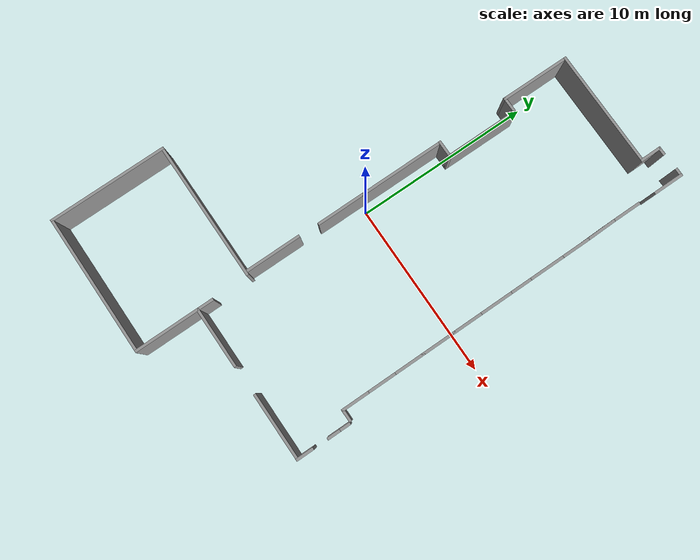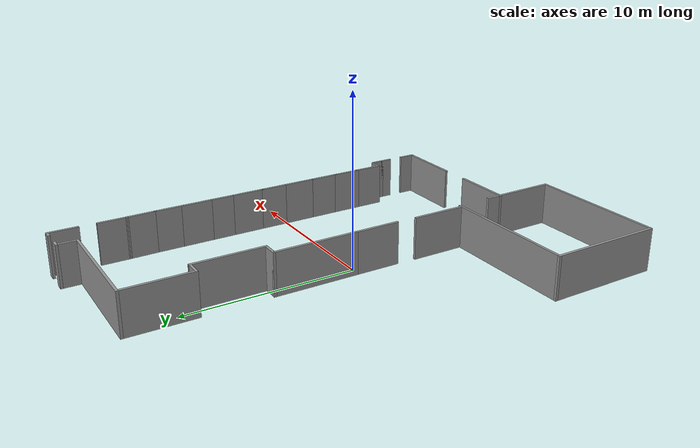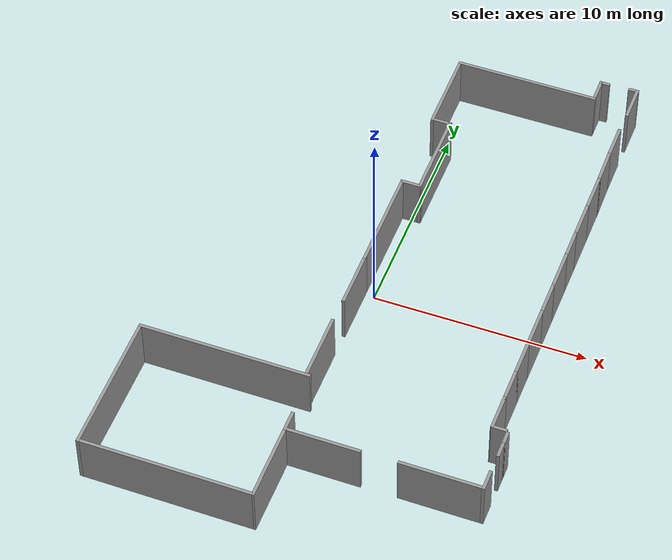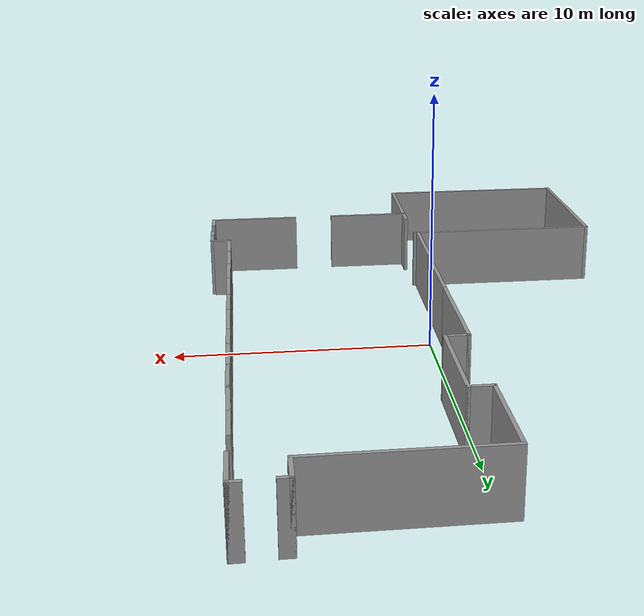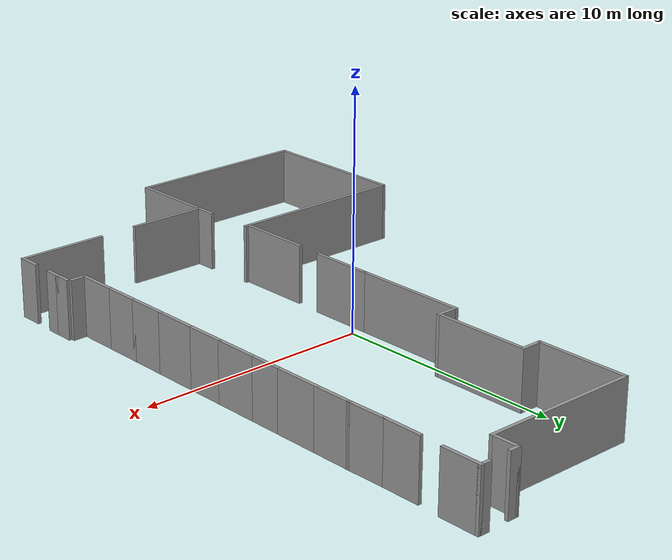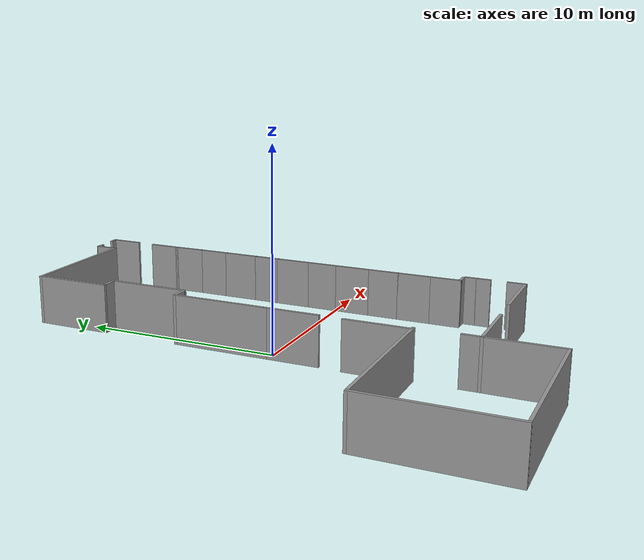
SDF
<?xml version='1.0'?>
<sdf version='1.6'>
  <model name='ecst_thermal_lab_frame_update'>
    <pose frame=''>0.138286 0.267631 0 0 -0 0</pose>
    <link name='Wall_0'>
      <collision name='Wall_0_Collision'>
        <geometry>
          <box>
            <size>8 0.15 2.5</size>
          </box>
        </geometry>
        <pose frame=''>0 0 1.25 0 -0 0</pose>
      </collision>
      <visual name='Wall_0_Visual'>
        <pose frame=''>0 0 1.25 0 -0 0</pose>
        <geometry>
          <box>
            <size>8 0.15 2.5</size>
          </box>
        </geometry>
        <material>
          <script>
            <uri>file://media/materials/scripts/gazebo.material</uri>
            <name>Gazebo/Grey</name>
          </script>
          <ambient>0.333333 0.341176 0.32549 1</ambient>
        </material>
        <meta>
          <layer>0</layer>
        </meta>
      </visual>
      <pose frame=''>-4.49229 -7.18663 0 0 -0 3.14159</pose>
    </link>
    <link name='Wall_1'>
      <collision name='Wall_1_Collision'>
        <geometry>
          <box>
            <size>6.75 0.15 2.5</size>
          </box>
        </geometry>
        <pose frame=''>0 0 1.25 0 -0 0</pose>
      </collision>
      <visual name='Wall_1_Visual'>
        <pose frame=''>0 0 1.25 0 -0 0</pose>
        <geometry>
          <box>
            <size>6.75 0.15 2.5</size>
          </box>
        </geometry>
        <material>
          <script>
            <uri>file://media/materials/scripts/gazebo.material</uri>
            <name>Gazebo/Grey</name>
          </script>
          <ambient>0.333333 0.341176 0.32549 1</ambient>
        </material>
        <meta>
          <layer>0</layer>
        </meta>
      </visual>
      <pose frame=''>-8.41729 -10.4866 0 0 -0 -1.5708</pose>
    </link>
    <link name='Wall_10'>
      <collision name='Wall_10_Collision'>
        <geometry>
          <box>
            <size>3.75 0.15 2.5</size>
          </box>
        </geometry>
        <pose frame=''>0 0 1.25 0 -0 0</pose>
      </collision>
      <visual name='Wall_10_Visual'>
        <pose frame=''>0 0 1.25 0 -0 0</pose>
        <geometry>
          <box>
            <size>3.75 0.15 2.5</size>
          </box>
        </geometry>
        <material>
          <script>
            <uri>file://media/materials/scripts/gazebo.material</uri>
            <name>Gazebo/Grey</name>
          </script>
          <ambient>0.333333 0.341176 0.32549 1</ambient>
        </material>
        <meta>
          <layer>0</layer>
        </meta>
      </visual>
      <pose frame=''>6.47111 -10.1498 0 0 -0 0</pose>
    </link>
    <link name='Wall_12'>
      <collision name='Wall_12_Collision'>
        <geometry>
          <box>
            <size>0.75 0.15 2.5</size>
          </box>
        </geometry>
        <pose frame=''>0 0 1.25 0 -0 0</pose>
      </collision>
      <visual name='Wall_12_Visual'>
        <pose frame=''>0 0 1.25 0 -0 0</pose>
        <geometry>
          <box>
            <size>0.75 0.15 2.5</size>
          </box>
        </geometry>
        <material>
          <script>
            <uri>file://media/materials/scripts/gazebo.material</uri>
            <name>Gazebo/Grey</name>
          </script>
          <ambient>0.333333 0.341176 0.32549 1</ambient>
        </material>
        <meta>
          <layer>0</layer>
        </meta>
      </visual>
      <pose frame=''>8.41729 -8.04223 0 0 -0 -1.5708</pose>
    </link>
    <link name='Wall_17'>
      <collision name='Wall_17_Collision'>
        <geometry>
          <box>
            <size>1 0.15 2.5</size>
          </box>
        </geometry>
        <pose frame=''>0 0 1.25 0 -0 0</pose>
      </collision>
      <visual name='Wall_17_Visual'>
        <pose frame=''>0 0 1.25 0 -0 0</pose>
        <geometry>
          <box>
            <size>1 0.15 2.5</size>
          </box>
        </geometry>
        <material>
          <script>
            <uri>file://media/materials/scripts/gazebo.material</uri>
            <name>Gazebo/Grey</name>
          </script>
          <ambient>0.333333 0.341176 0.32549 1</ambient>
        </material>
        <meta>
          <layer>0</layer>
        </meta>
      </visual>
      <pose frame=''>8.39378 -9.72627 0 0 -0 -1.5708</pose>
    </link>
    <link name='Wall_2'>
      <collision name='Wall_2_Collision'>
        <geometry>
          <box>
            <size>8 0.15 2.5</size>
          </box>
        </geometry>
        <pose frame=''>0 0 1.25 0 -0 0</pose>
      </collision>
      <visual name='Wall_2_Visual'>
        <pose frame=''>0 0 1.25 0 -0 0</pose>
        <geometry>
          <box>
            <size>8 0.15 2.5</size>
          </box>
        </geometry>
        <material>
          <script>
            <uri>file://media/materials/scripts/gazebo.material</uri>
            <name>Gazebo/Grey</name>
          </script>
          <ambient>0.333333 0.341176 0.32549 1</ambient>
        </material>
        <meta>
          <layer>0</layer>
        </meta>
      </visual>
      <pose frame=''>-4.49229 -13.7866 0 0 -0 0</pose>
    </link>
    <link name='Wall_24'>
      <collision name='Wall_24_Collision'>
        <geometry>
          <box>
            <size>0.75 0.15 2.5</size>
          </box>
        </geometry>
        <pose frame=''>0 0 1.25 0 -0 0</pose>
      </collision>
      <visual name='Wall_24_Visual'>
        <pose frame=''>0 0 1.25 0 -0 0</pose>
        <geometry>
          <box>
            <size>0.75 0.15 2.5</size>
          </box>
        </geometry>
        <material>
          <script>
            <uri>file://media/materials/scripts/gazebo.material</uri>
            <name>Gazebo/Grey</name>
          </script>
          <ambient>0.333333 0.341176 0.32549 1</ambient>
        </material>
        <meta>
          <layer>0</layer>
        </meta>
      </visual>
      <pose frame=''>8.41729 -7.44223 0 0 -0 1.5708</pose>
    </link>
    <link name='Wall_39'>
      <collision name='Wall_39_Collision'>
        <geometry>
          <box>
            <size>1.75 0.15 2.5</size>
          </box>
        </geometry>
        <pose frame=''>0 0 1.25 0 -0 0</pose>
      </collision>
      <visual name='Wall_39_Visual'>
        <pose frame=''>0 0 1.25 0 -0 0</pose>
        <geometry>
          <box>
            <size>1.75 0.15 2.5</size>
          </box>
        </geometry>
        <material>
          <script>
            <uri>file://media/materials/scripts/gazebo.material</uri>
            <name>Gazebo/Grey</name>
          </script>
          <ambient>1 1 1 1</ambient>
        </material>
        <meta>
          <layer>0</layer>
        </meta>
      </visual>
      <pose frame=''>7.69144 -4.60777 0 0 -0 -1.5708</pose>
    </link>
    <link name='Wall_40'>
      <collision name='Wall_40_Collision'>
        <geometry>
          <box>
            <size>1.75 0.15 2.5</size>
          </box>
        </geometry>
        <pose frame=''>0 0 1.25 0 -0 0</pose>
      </collision>
      <visual name='Wall_40_Visual'>
        <pose frame=''>0 0 1.25 0 -0 0</pose>
        <geometry>
          <box>
            <size>1.75 0.15 2.5</size>
          </box>
        </geometry>
        <material>
          <script>
            <uri>file://media/materials/scripts/gazebo.material</uri>
            <name>Gazebo/Grey</name>
          </script>
          <ambient>0.333333 0.341176 0.32549 1</ambient>
        </material>
        <meta>
          <layer>0</layer>
        </meta>
      </visual>
      <pose frame=''>7.69144 -6.20777 0 0 -0 -1.5708</pose>
    </link>
    <link name='Wall_42'>
      <collision name='Wall_42_Collision'>
        <geometry>
          <box>
            <size>1.75 0.15 2.5</size>
          </box>
        </geometry>
        <pose frame=''>0 0 1.25 0 -0 0</pose>
      </collision>
      <visual name='Wall_42_Visual'>
        <pose frame=''>0 0 1.25 0 -0 0</pose>
        <geometry>
          <box>
            <size>1.75 0.15 2.5</size>
          </box>
        </geometry>
        <material>
          <script>
            <uri>file://media/materials/scripts/gazebo.material</uri>
            <name>Gazebo/Grey</name>
          </script>
          <ambient>0.333333 0.341176 0.32549 1</ambient>
        </material>
        <meta>
          <layer>0</layer>
        </meta>
      </visual>
      <pose frame=''>7.69144 -3.00777 0 0 -0 1.5708</pose>
    </link>
    <link name='Wall_43'>
      <collision name='Wall_43_Collision'>
        <geometry>
          <box>
            <size>2 0.15 2.5</size>
          </box>
        </geometry>
        <pose frame=''>0 0 1.25 0 -0 0</pose>
      </collision>
      <visual name='Wall_43_Visual'>
        <pose frame=''>0 0 1.25 0 -0 0</pose>
        <geometry>
          <box>
            <size>2 0.15 2.5</size>
          </box>
        </geometry>
        <material>
          <script>
            <uri>file://media/materials/scripts/gazebo.material</uri>
            <name>Gazebo/Grey</name>
          </script>
          <ambient>1 1 1 1</ambient>
        </material>
        <meta>
          <layer>0</layer>
        </meta>
      </visual>
      <pose frame=''>7.69144 -1.28277 0 0 -0 1.5708</pose>
    </link>
    <link name='Wall_44'>
      <collision name='Wall_44_Collision'>
        <geometry>
          <box>
            <size>1.75 0.15 2.5</size>
          </box>
        </geometry>
        <pose frame=''>0 0 1.25 0 -0 0</pose>
      </collision>
      <visual name='Wall_44_Visual'>
        <pose frame=''>0 0 1.25 0 -0 0</pose>
        <geometry>
          <box>
            <size>1.75 0.15 2.5</size>
          </box>
        </geometry>
        <material>
          <script>
            <uri>file://media/materials/scripts/gazebo.material</uri>
            <name>Gazebo/Grey</name>
          </script>
          <ambient>0.333333 0.341176 0.32549 1</ambient>
        </material>
        <meta>
          <layer>0</layer>
        </meta>
      </visual>
      <pose frame=''>7.69144 0.442234 0 0 -0 1.5708</pose>
    </link>
    <link name='Wall_46'>
      <collision name='Wall_46_Collision'>
        <geometry>
          <box>
            <size>2 0.15 2.5</size>
          </box>
        </geometry>
        <pose frame=''>0 0 1.25 0 -0 0</pose>
      </collision>
      <visual name='Wall_46_Visual'>
        <pose frame=''>0 0 1.25 0 -0 0</pose>
        <geometry>
          <box>
            <size>2 0.15 2.5</size>
          </box>
        </geometry>
        <material>
          <script>
            <uri>file://media/materials/scripts/gazebo.material</uri>
            <name>Gazebo/Grey</name>
          </script>
          <ambient>1 1 1 1</ambient>
        </material>
        <meta>
          <layer>0</layer>
        </meta>
      </visual>
      <pose frame=''>7.69144 2.16723 0 0 -0 1.5708</pose>
    </link>
    <link name='Wall_47'>
      <collision name='Wall_47_Collision'>
        <geometry>
          <box>
            <size>1.5 0.15 2.5</size>
          </box>
        </geometry>
        <pose frame=''>0 0 1.25 0 -0 0</pose>
      </collision>
      <visual name='Wall_47_Visual'>
        <pose frame=''>0 0 1.25 0 -0 0</pose>
        <geometry>
          <box>
            <size>1.5 0.15 2.5</size>
          </box>
        </geometry>
        <material>
          <script>
            <uri>file://media/materials/scripts/gazebo.material</uri>
            <name>Gazebo/Grey</name>
          </script>
          <ambient>0.333333 0.341176 0.32549 1</ambient>
        </material>
        <meta>
          <layer>0</layer>
        </meta>
      </visual>
      <pose frame=''>7.69144 3.76723 0 0 -0 1.5708</pose>
    </link>
    <link name='Wall_48'>
      <collision name='Wall_48_Collision'>
        <geometry>
          <box>
            <size>2 0.15 2.5</size>
          </box>
        </geometry>
        <pose frame=''>0 0 1.25 0 -0 0</pose>
      </collision>
      <visual name='Wall_48_Visual'>
        <pose frame=''>0 0 1.25 0 -0 0</pose>
        <geometry>
          <box>
            <size>2 0.15 2.5</size>
          </box>
        </geometry>
        <material>
          <script>
            <uri>file://media/materials/scripts/gazebo.material</uri>
            <name>Gazebo/Grey</name>
          </script>
          <ambient>1 1 1 1</ambient>
        </material>
        <meta>
          <layer>0</layer>
        </meta>
      </visual>
      <pose frame=''>7.69144 5.36723 0 0 -0 1.5708</pose>
    </link>
    <link name='Wall_49'>
      <collision name='Wall_49_Collision'>
        <geometry>
          <box>
            <size>1.75 0.15 2.5</size>
          </box>
        </geometry>
        <pose frame=''>0 0 1.25 0 -0 0</pose>
      </collision>
      <visual name='Wall_49_Visual'>
        <pose frame=''>0 0 1.25 0 -0 0</pose>
        <geometry>
          <box>
            <size>1.75 0.15 2.5</size>
          </box>
        </geometry>
        <material>
          <script>
            <uri>file://media/materials/scripts/gazebo.material</uri>
            <name>Gazebo/Grey</name>
          </script>
          <ambient>0.333333 0.341176 0.32549 1</ambient>
        </material>
        <meta>
          <layer>0</layer>
        </meta>
      </visual>
      <pose frame=''>7.69144 7.09223 0 0 -0 1.5708</pose>
    </link>
    <link name='Wall_5'>
      <collision name='Wall_5_Collision'>
        <geometry>
          <box>
            <size>1 0.15 2.5</size>
          </box>
        </geometry>
        <pose frame=''>0 0 1.25 0 -0 0</pose>
      </collision>
      <visual name='Wall_5_Visual'>
        <pose frame=''>0 0 1.25 0 -0 0</pose>
        <geometry>
          <box>
            <size>1 0.15 2.5</size>
          </box>
        </geometry>
        <material>
          <script>
            <uri>file://media/materials/scripts/gazebo.material</uri>
            <name>Gazebo/Grey</name>
          </script>
          <ambient>0.333333 0.341176 0.32549 1</ambient>
        </material>
        <meta>
          <layer>0</layer>
        </meta>
      </visual>
      <pose frame=''>-0.467362 -9.76165 0 0 -0 1.57098</pose>
    </link>
    <link name='Wall_50'>
      <collision name='Wall_50_Collision'>
        <geometry>
          <box>
            <size>1.79027 0.15 2.5</size>
          </box>
        </geometry>
        <pose frame=''>0 0 1.25 0 -0 0</pose>
      </collision>
      <visual name='Wall_50_Visual'>
        <pose frame=''>0 0 1.25 0 -0 0</pose>
        <geometry>
          <box>
            <size>1.79027 0.15 2.5</size>
          </box>
        </geometry>
        <material>
          <script>
            <uri>file://media/materials/scripts/gazebo.material</uri>
            <name>Gazebo/Grey</name>
          </script>
          <ambient>1 1 1 1</ambient>
        </material>
        <meta>
          <layer>0</layer>
        </meta>
      </visual>
      <pose frame=''>7.67644 8.71223 0 0 -0 1.58909</pose>
    </link>
    <link name='Wall_51'>
      <collision name='Wall_51_Collision'>
        <geometry>
          <box>
            <size>1.74 0.15 2.5</size>
          </box>
        </geometry>
        <pose frame=''>0 0 1.25 0 -0 0</pose>
      </collision>
      <visual name='Wall_51_Visual'>
        <pose frame=''>0 0 1.25 0 -0 0</pose>
        <geometry>
          <box>
            <size>1.74 0.15 2.5</size>
          </box>
        </geometry>
        <material>
          <script>
            <uri>file://media/materials/scripts/gazebo.material</uri>
            <name>Gazebo/Grey</name>
          </script>
          <ambient>0.333333 0.341176 0.32549 1</ambient>
        </material>
        <meta>
          <layer>0</layer>
        </meta>
      </visual>
      <pose frame=''>7.66144 10.3172 0 0 -0 1.5708</pose>
    </link>
    <link name='Wall_55'>
      <collision name='Wall_55_Collision'>
        <geometry>
          <box>
            <size>1.75 0.15 2.5</size>
          </box>
        </geometry>
        <pose frame=''>0 0 1.25 0 -0 0</pose>
      </collision>
      <visual name='Wall_55_Visual'>
        <pose frame=''>0 0 1.25 0 -0 0</pose>
        <geometry>
          <box>
            <size>1.75 0.15 2.5</size>
          </box>
        </geometry>
        <material>
          <script>
            <uri>file://media/materials/scripts/gazebo.material</uri>
            <name>Gazebo/Grey</name>
          </script>
          <ambient>0.333333 0.341176 0.32549 1</ambient>
        </material>
        <meta>
          <layer>0</layer>
        </meta>
      </visual>
      <pose frame=''>7.7071 12.9866 0 0 -0 1.5708</pose>
    </link>
    <link name='Wall_56'>
      <collision name='Wall_56_Collision'>
        <geometry>
          <box>
            <size>0.5 0.15 2.5</size>
          </box>
        </geometry>
        <pose frame=''>0 0 1.25 0 -0 0</pose>
      </collision>
      <visual name='Wall_56_Visual'>
        <pose frame=''>0 0 1.25 0 -0 0</pose>
        <geometry>
          <box>
            <size>0.5 0.15 2.5</size>
          </box>
        </geometry>
        <material>
          <script>
            <uri>file://media/materials/scripts/gazebo.material</uri>
            <name>Gazebo/Grey</name>
          </script>
          <ambient>0.333333 0.341176 0.32549 1</ambient>
        </material>
        <meta>
          <layer>0</layer>
        </meta>
      </visual>
      <pose frame=''>7.5321 13.7866 0 0 -0 3.14159</pose>
    </link>
    <link name='Wall_58'>
      <collision name='Wall_58_Collision'>
        <geometry>
          <box>
            <size>0.5 0.15 2.5</size>
          </box>
        </geometry>
        <pose frame=''>0 0 1.25 0 -0 0</pose>
      </collision>
      <visual name='Wall_58_Visual'>
        <pose frame=''>0 0 1.25 0 -0 0</pose>
        <geometry>
          <box>
            <size>0.5 0.15 2.5</size>
          </box>
        </geometry>
        <material>
          <script>
            <uri>file://media/materials/scripts/gazebo.material</uri>
            <name>Gazebo/Grey</name>
          </script>
          <ambient>0.333333 0.341176 0.32549 1</ambient>
        </material>
        <meta>
          <layer>0</layer>
        </meta>
      </visual>
      <pose frame=''>6.1329 13.7379 0 0 -0 3.14159</pose>
    </link>
    <link name='Wall_59'>
      <collision name='Wall_59_Collision'>
        <geometry>
          <box>
            <size>1.25 0.15 2.5</size>
          </box>
        </geometry>
        <pose frame=''>0 0 1.25 0 -0 0</pose>
      </collision>
      <visual name='Wall_59_Visual'>
        <pose frame=''>0 0 1.25 0 -0 0</pose>
        <geometry>
          <box>
            <size>1.25 0.15 2.5</size>
          </box>
        </geometry>
        <material>
          <script>
            <uri>file://media/materials/scripts/gazebo.material</uri>
            <name>Gazebo/Grey</name>
          </script>
          <ambient>0.333333 0.341176 0.32549 1</ambient>
        </material>
        <meta>
          <layer>0</layer>
        </meta>
      </visual>
      <pose frame=''>5.9579 13.1879 0 0 -0 -1.5708</pose>
    </link>
    <link name='Wall_60'>
      <collision name='Wall_60_Collision'>
        <geometry>
          <box>
            <size>6.75 0.15 2.5</size>
          </box>
        </geometry>
        <pose frame=''>0 0 1.25 0 -0 0</pose>
      </collision>
      <visual name='Wall_60_Visual'>
        <pose frame=''>0 0 1.25 0 -0 0</pose>
        <geometry>
          <box>
            <size>6.75 0.15 2.5</size>
          </box>
        </geometry>
        <material>
          <script>
            <uri>file://media/materials/scripts/gazebo.material</uri>
            <name>Gazebo/Grey</name>
          </script>
          <ambient>0.333333 0.341176 0.32549 1</ambient>
        </material>
        <meta>
          <layer>0</layer>
        </meta>
      </visual>
      <pose frame=''>2.6579 12.6379 0 0 -0 3.14159</pose>
    </link>
    <link name='Wall_61'>
      <collision name='Wall_61_Collision'>
        <geometry>
          <box>
            <size>4 0.15 2.5</size>
          </box>
        </geometry>
        <pose frame=''>0 0 1.25 0 -0 0</pose>
      </collision>
      <visual name='Wall_61_Visual'>
        <pose frame=''>0 0 1.25 0 -0 0</pose>
        <geometry>
          <box>
            <size>4 0.15 2.5</size>
          </box>
        </geometry>
        <material>
          <script>
            <uri>file://media/materials/scripts/gazebo.material</uri>
            <name>Gazebo/Grey</name>
          </script>
          <ambient>0.333333 0.341176 0.32549 1</ambient>
        </material>
        <meta>
          <layer>0</layer>
        </meta>
      </visual>
      <pose frame=''>-0.642102 10.7129 0 0 -0 -1.5708</pose>
    </link>
    <link name='Wall_62'>
      <collision name='Wall_62_Collision'>
        <geometry>
          <box>
            <size>1 0.15 2.5</size>
          </box>
        </geometry>
        <pose frame=''>0 0 1.25 0 -0 0</pose>
      </collision>
      <visual name='Wall_62_Visual'>
        <pose frame=''>0 0 1.25 0 -0 0</pose>
        <geometry>
          <box>
            <size>1 0.15 2.5</size>
          </box>
        </geometry>
        <material>
          <script>
            <uri>file://media/materials/scripts/gazebo.material</uri>
            <name>Gazebo/Grey</name>
          </script>
          <ambient>0.333333 0.341176 0.32549 1</ambient>
        </material>
        <meta>
          <layer>0</layer>
        </meta>
      </visual>
      <pose frame=''>-0.217102 8.78792 0 0 -0 0</pose>
    </link>
    <link name='Wall_63'>
      <collision name='Wall_63_Collision'>
        <geometry>
          <box>
            <size>4.25 0.15 2.5</size>
          </box>
        </geometry>
        <pose frame=''>0 0 1.25 0 -0 0</pose>
      </collision>
      <visual name='Wall_63_Visual'>
        <pose frame=''>0 0 1.25 0 -0 0</pose>
        <geometry>
          <box>
            <size>4.25 0.15 2.5</size>
          </box>
        </geometry>
        <material>
          <script>
            <uri>file://media/materials/scripts/gazebo.material</uri>
            <name>Gazebo/Grey</name>
          </script>
          <ambient>0.333333 0.341176 0.32549 1</ambient>
        </material>
        <meta>
          <layer>0</layer>
        </meta>
      </visual>
      <pose frame=''>0.207898 6.73792 0 0 -0 -1.5708</pose>
    </link>
    <link name='Wall_64'>
      <collision name='Wall_64_Collision'>
        <geometry>
          <box>
            <size>1 0.15 2.5</size>
          </box>
        </geometry>
        <pose frame=''>0 0 1.25 0 -0 0</pose>
      </collision>
      <visual name='Wall_64_Visual'>
        <pose frame=''>0 0 1.25 0 -0 0</pose>
        <geometry>
          <box>
            <size>1 0.15 2.5</size>
          </box>
        </geometry>
        <material>
          <script>
            <uri>file://media/materials/scripts/gazebo.material</uri>
            <name>Gazebo/Grey</name>
          </script>
          <ambient>0.333333 0.341176 0.32549 1</ambient>
        </material>
        <meta>
          <layer>0</layer>
        </meta>
      </visual>
      <pose frame=''>-0.217102 4.68792 0 0 -0 3.14159</pose>
    </link>
    <link name='Wall_65'>
      <collision name='Wall_65_Collision'>
        <geometry>
          <box>
            <size>5 0.15 2.5</size>
          </box>
        </geometry>
        <pose frame=''>0 0 1.25 0 -0 0</pose>
      </collision>
      <visual name='Wall_65_Visual'>
        <pose frame=''>0 0 1.25 0 -0 0</pose>
        <geometry>
          <box>
            <size>5 0.15 2.5</size>
          </box>
        </geometry>
        <material>
          <script>
            <uri>file://media/materials/scripts/gazebo.material</uri>
            <name>Gazebo/Grey</name>
          </script>
          <ambient>0.333333 0.341176 0.32549 1</ambient>
        </material>
        <meta>
          <layer>0</layer>
        </meta>
      </visual>
      <pose frame=''>-0.642102 2.26292 0 0 -0 -1.5708</pose>
    </link>
    <link name='Wall_66'>
      <collision name='Wall_66_Collision'>
        <geometry>
          <box>
            <size>2.75 0.15 2.5</size>
          </box>
        </geometry>
        <pose frame=''>0 0 1.25 0 -0 0</pose>
      </collision>
      <visual name='Wall_66_Visual'>
        <pose frame=''>0 0 1.25 0 -0 0</pose>
        <geometry>
          <box>
            <size>2.75 0.15 2.5</size>
          </box>
        </geometry>
        <material>
          <script>
            <uri>file://media/materials/scripts/gazebo.material</uri>
            <name>Gazebo/Grey</name>
          </script>
          <ambient>0 0 0 1</ambient>
        </material>
        <meta>
          <layer>0</layer>
        </meta>
      </visual>
      <pose frame=''>-0.642102 -1.46208 0 0 -0 -1.5708</pose>
    </link>
    <link name='Wall_69'>
      <collision name='Wall_69_Collision'>
        <geometry>
          <box>
            <size>3.25 0.15 2.5</size>
          </box>
        </geometry>
        <pose frame=''>0 0 1.25 0 -0 0</pose>
      </collision>
      <visual name='Wall_69_Visual'>
        <pose frame=''>0 0 1.25 0 -0 0</pose>
        <geometry>
          <box>
            <size>3.25 0.15 2.5</size>
          </box>
        </geometry>
        <material>
          <script>
            <uri>file://media/materials/scripts/gazebo.material</uri>
            <name>Gazebo/Grey</name>
          </script>
          <ambient>0 0 0 1</ambient>
        </material>
        <meta>
          <layer>0</layer>
        </meta>
      </visual>
      <pose frame=''>-0.693895 -5.56583 0 0 -0 -1.5708</pose>
    </link>
    <link name='Wall_7'>
      <collision name='Wall_7_Collision'>
        <geometry>
          <box>
            <size>3.5 0.15 2.5</size>
          </box>
        </geometry>
        <pose frame=''>0 0 1.25 0 -0 0</pose>
      </collision>
      <visual name='Wall_7_Visual'>
        <pose frame=''>0 0 1.25 0 -0 0</pose>
        <geometry>
          <box>
            <size>3.5 0.15 2.5</size>
          </box>
        </geometry>
        <material>
          <script>
            <uri>file://media/materials/scripts/gazebo.material</uri>
            <name>Gazebo/Grey</name>
          </script>
          <ambient>0.333333 0.341176 0.32549 1</ambient>
        </material>
        <meta>
          <layer>0</layer>
        </meta>
      </visual>
      <pose frame=''>1.20764 -10.1867 0 0 -0 -1.4e-05</pose>
    </link>
    <link name='Wall_75'>
      <collision name='Wall_75_Collision'>
        <geometry>
          <box>
            <size>0.75 0.15 2.5</size>
          </box>
        </geometry>
        <pose frame=''>0 0 1.25 0 -0 0</pose>
      </collision>
      <visual name='Wall_75_Visual'>
        <pose frame=''>0 0 1.25 0 -0 0</pose>
        <geometry>
          <box>
            <size>0.75 0.15 2.5</size>
          </box>
        </geometry>
        <material>
          <script>
            <uri>file://media/materials/scripts/gazebo.material</uri>
            <name>Gazebo/Grey</name>
          </script>
          <ambient>0.333333 0.341176 0.32549 1</ambient>
        </material>
        <meta>
          <layer>0</layer>
        </meta>
      </visual>
      <pose frame=''>7.99144 -7.00777 0 0 -0 0</pose>
    </link>
    <link name='Wall_82'>
      <collision name='Wall_82_Collision'>
        <geometry>
          <box>
            <size>3.75 0.15 2.5</size>
          </box>
        </geometry>
        <pose frame=''>0 0 1.25 0 -0 0</pose>
      </collision>
      <visual name='Wall_82_Visual'>
        <pose frame=''>0 0 1.25 0 -0 0</pose>
        <geometry>
          <box>
            <size>3.75 0.15 2.5</size>
          </box>
        </geometry>
        <material>
          <script>
            <uri>file://media/materials/scripts/gazebo.material</uri>
            <name>Gazebo/Grey</name>
          </script>
          <ambient>0.333333 0.341176 0.32549 1</ambient>
        </material>
        <meta>
          <layer>0</layer>
        </meta>
      </visual>
      <pose frame=''>-0.467286 -11.9866 0 0 -0 -1.5708</pose>
    </link>
    <static>1</static>
  </model>
</sdf>
